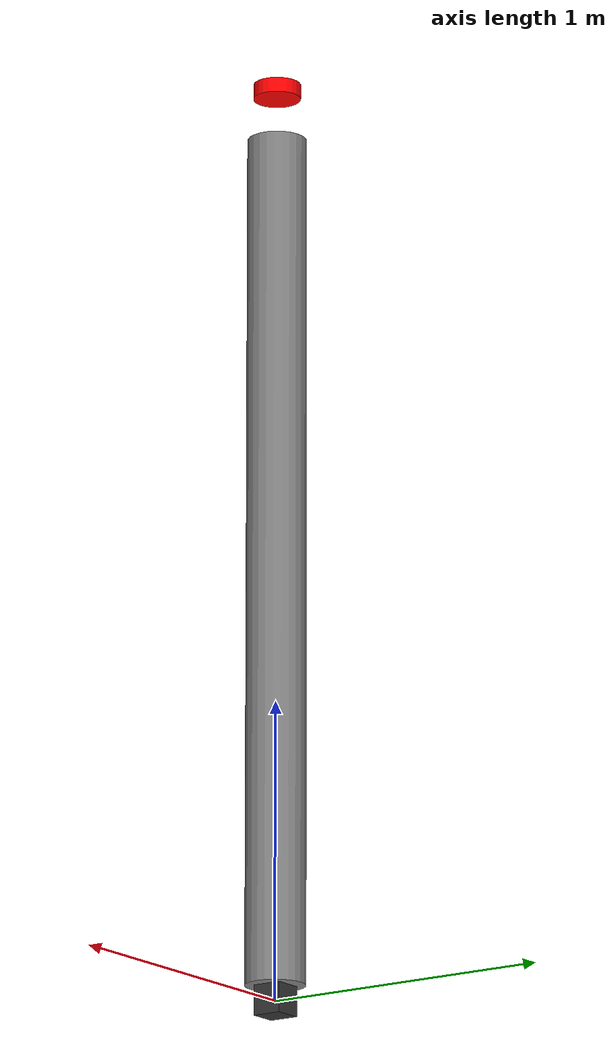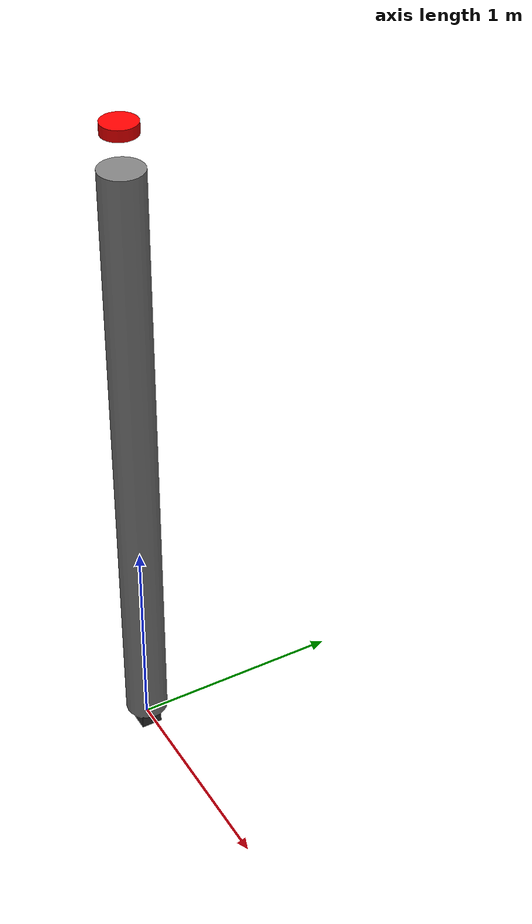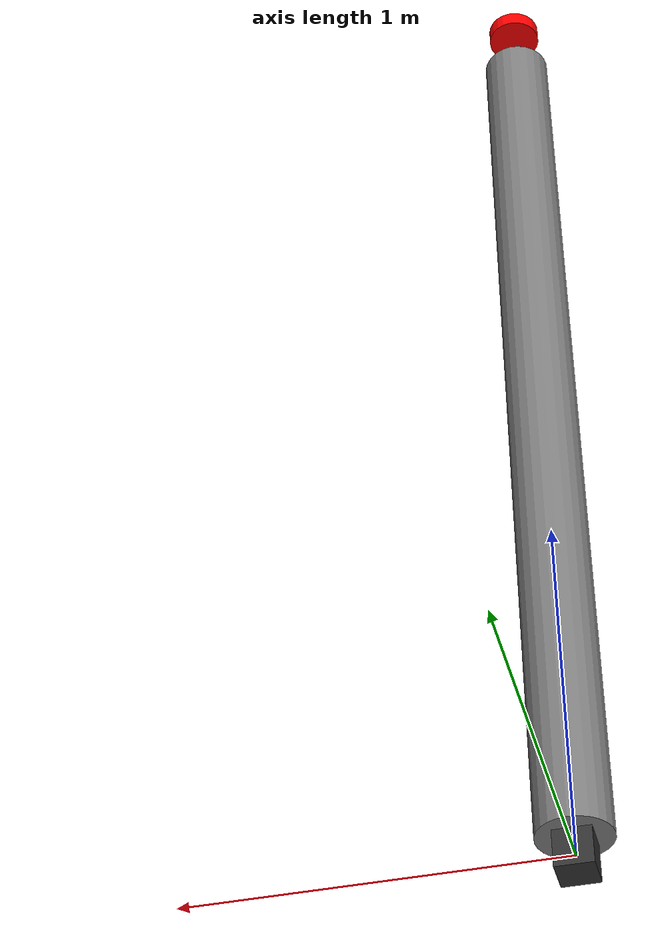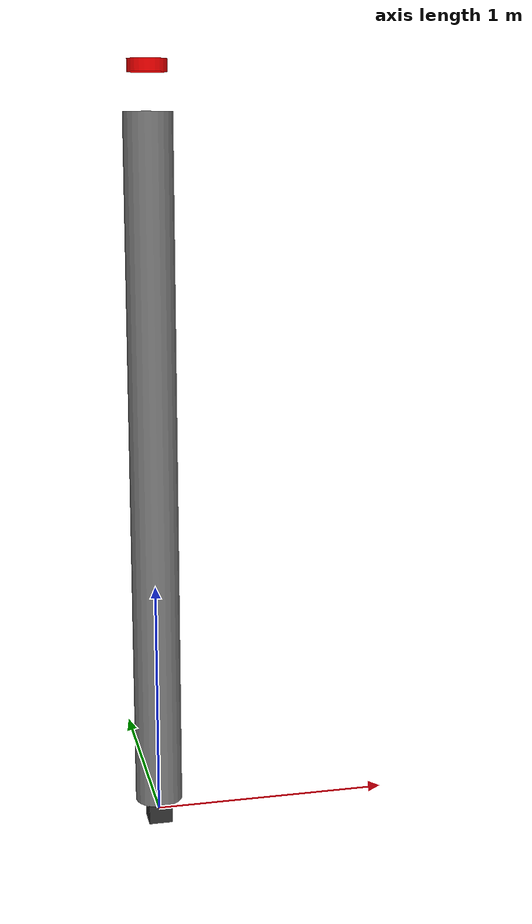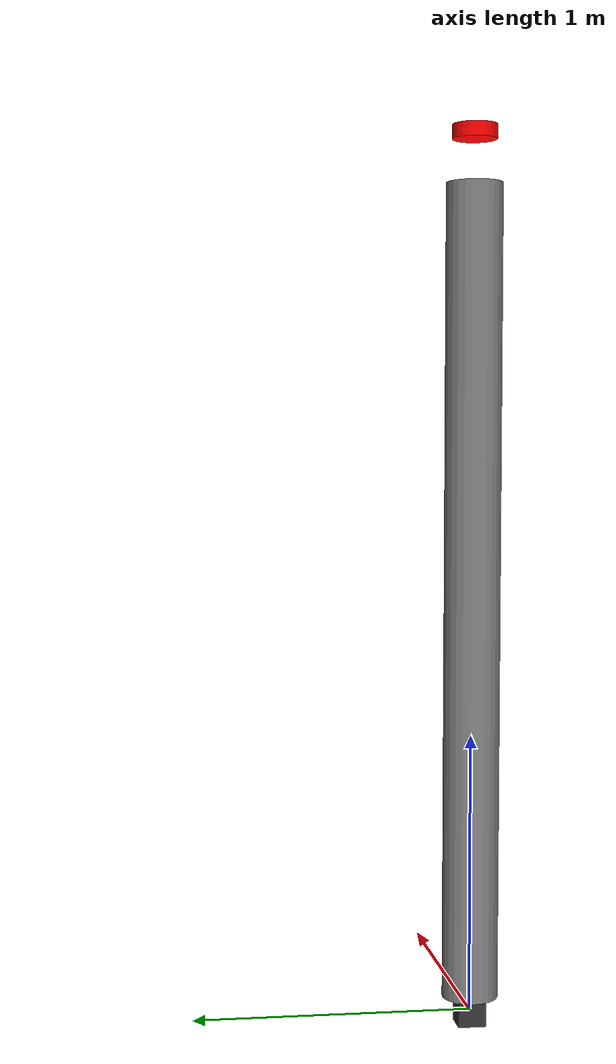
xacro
<?xml version="1.0"?>
<robot xmlns:xacro="http://www.ros.org/wiki/xacro" name="pole">

  <!-- Base link (root of robot) -->
  <link name="base_link">
    <visual>
      <geometry>
        <box size="0.1 0.1 0.1"/>
      </geometry>
      <material name="dark_gray">
        <color rgba="0.2 0.2 0.2 1.0"/>
      </material>
    </visual>
  </link>

  <!-- Vertical pole -->
  <link name="pole">
    <visual name="pole_visual">
      <geometry>
        <cylinder radius="0.1" length="2.9"/>
      </geometry>
      <origin xyz="0 0 1.5" rpy="0 0 0"/>
      <material name="light_gray">
        <color rgba="0.5 0.5 0.5 1.0"/>
      </material>
    </visual>

    <collision name="pole_collision">
      <geometry>
        <cylinder radius="0.1" length="2.9"/>
      </geometry>
      <origin xyz="0 0 1.5" rpy="0 0 0"/>
    </collision>

    <inertial>
      <mass value="1.0"/>
      <inertia ixx="0.01" ixy="0" ixz="0" iyy="0.01" iyz="0" izz="0.01"/>
    </inertial>
  </link>

  <!-- Joint: base_link -> pole -->
  <joint name="base_to_pole" type="fixed">
    <parent link="base_link"/>
    <child link="pole"/>
    <origin xyz="0 0 0" rpy="0 0 0"/>
  </joint>

  <!-- Fix the pole in place -->
  <gazebo reference="pole">
    <static>true</static>
  </gazebo>

  <!-- LiDAR on top -->
  <xacro:include filename="$(find bee_farm_sim)/description/lidar.xacro"/>

</robot>

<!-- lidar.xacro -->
<robot xmlns:xacro="http://www.ros.org/wiki/xacro">

  <!-- Fixed joint to pole -->
  <joint name="lidar_joint" type="fixed">
    <parent link="pole"/>
    <child link="lidar_frame"/>
    <origin xyz="0 0 3.1" rpy="0 0 0"/>
  </joint>

  <!-- LiDAR link -->
  <link name="lidar_frame">
    <visual>
      <geometry>
        <cylinder radius="0.08" length="0.05"/>
      </geometry>
      <origin xyz="0 0 0.025" rpy="0 0 0"/>
      <material name="red">
        <color rgba="1 0 0 1"/>
      </material>
    </visual>

    <collision>
      <geometry>
        <cylinder radius="0.08" length="0.05"/>
      </geometry>
    </collision>

    <inertial>
      <mass value="0.1"/>
      <inertia ixx="0.0001" ixy="0" ixz="0" iyy="0.0001" iyz="0" izz="0.0001"/>
    </inertial>
  </link>

  <!-- Gazebo LiDAR sensor configuration -->
  <gazebo reference="lidar_frame">
    <material>Gazebo/Red</material>

    <!-- LiDAR Sensor -->
    <sensor name="lidar" type="ray">
      <always_on>true</always_on>
      <update_rate>10</update_rate>
      <visualize>true</visualize> <!-- Show rays in Gazebo -->
      <pose>0 0 0 0 0 0</pose>

      <ray>
        <scan>
          <horizontal>
            <samples>360</samples>
            <resolution>1</resolution>
            <min_angle>-0.7854</min_angle>      <!-- -45 degrees -->
            <max_angle>3.9270</max_angle>       <!-- 225 degrees -->
          </horizontal>
        </scan>

        <range>
          <min>0.2</min> <!-- in meters -->
          <max>12.0</max> <!-- in meters -->
          <resolution>0.01</resolution>
        </range>
      </ray>

      <!-- ROS 2 Plugin -->
      <plugin name="gazebo_ros_laser_controller" filename="libgazebo_ros_ray_sensor.so">
        <ros>
          <namespace>/</namespace>
          <argument>~/out:=/scan</argument>
        </ros>
        <output_type>sensor_msgs/LaserScan</output_type>
        <frame_name>lidar_frame</frame_name>
      </plugin>
    </sensor>
  </gazebo>

</robot>
